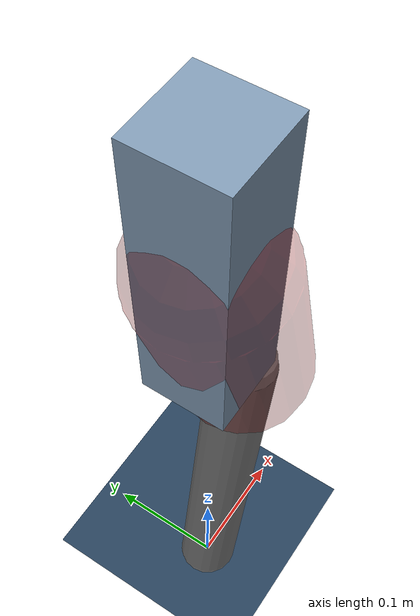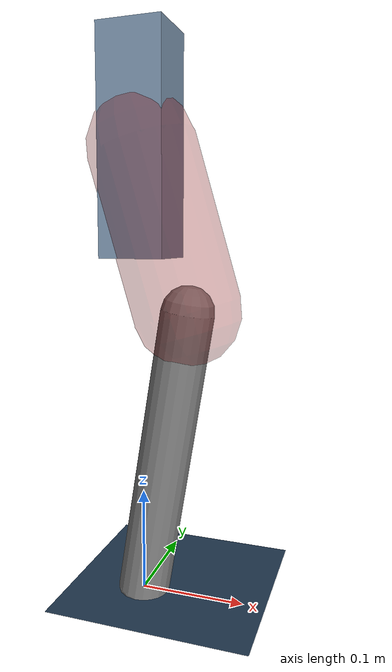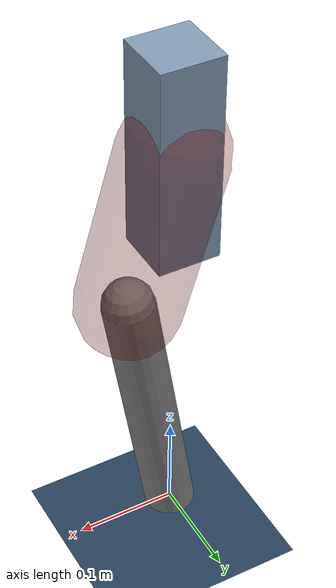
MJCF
<mujoco model="Hopper2D">
	<compiler inertiafromgeom="true" angle="radian" />
	<option timestep="0.001" integrator="implicit" cone="elliptic" solver="Newton" tolerance="1e-10" />

	<default>
		<geom contype="1" conaffinity="1" condim="3" friction="2 0.005 0.0001" solref="0.005 1" />
		<joint limited="true" damping="0.1" />
	</default>

	<asset>
		<texture name="skybox" type="skybox" builtin="gradient" rgb1=".4 .6 .8" rgb2="0 0 0" width="800" height="800" />
		<texture name="grid" type="2d" builtin="checker" rgb1=".1 .2 .3" rgb2=".2 .3 .4" width="300" height="300" mark="edge" markrgb=".2 .3 .4" />
		<material name="ground" texture="grid" texrepeat="1 1" texuniform="true" reflectance="0.1" />
		<material name="leg" rgba="0.5 0.6 0.7 1" />
	</asset>

	<worldbody>

		<geom name="floor" type="plane" size="5 5 0.25" material="ground" />

		<light directional="false" diffuse="0.8 0.8 0.8" specular="0.3 0.3 0.3" pos="0 0 2" dir="0 0 -1" />
		<light mode="targetbodycom" target="base" directional="false" diffuse="0.8 0.8 0.8" specular="0.3 0.3 0.3" pos="0 0 2" dir="0 0 -1" />

		<camera name="fixed" pos="0 -2 1" xyaxes="1 0 0 0 0 1" />
		<camera name="tracking" mode="trackcom" pos="0 -3 1" />

		<body name="root" pos="0 0 0.42561450453955774">
			<joint name="slide_x" type="slide" axis="1 0 0" range="-100 100" />
			<joint name="slide_z" type="slide" axis="0 0 1" range="0 10" />

			<body name="base" pos="0 0 0">
				<geom name="torso" type="box" size="0.03 0.03 0.1" mass="2.099" material="leg" />

				<body name="link1" pos="0 0 0" euler="0 1.281242429900208 0">
					<joint type="hinge" axis="0 -1 0" pos="0 0 0" name="hinge1" limited="true" range="-3.14 3.14" stiffness="0" damping="0.1" />
					<geom name="thigh" type="capsule" fromto="0 0 0 0.1553568938800567 0 0" size="0.05" rgba="0.5 0 0 0.3" mass="0.6212208559241303" />

					<body name="link2" pos="0.1553568938800567 0 0" euler="0 0.44849894718636096 0">
						<joint type="hinge" axis="0 -1 0" pos="0 0 0" name="hinge2" limited="true" range="-3.14 3.14" stiffness="0" damping="0.1" />
						<geom name="shank" type="capsule" fromto="0 0 0 0.28025761065950106 0 0" size="0.025" mass="0.4673060885276008" />

					</body>
				</body>
			</body>
		</body>
	</worldbody>

	<actuator>
		<motor name="torque1" joint="hinge1" ctrlrange="-101.60398321789188 101.60398321789188" ctrllimited="true" gear="1" />
		<motor name="torque2" joint="hinge2" ctrlrange="-12.28093830247215 12.28093830247215" ctrllimited="true" gear="1" />
	</actuator>
</mujoco>
